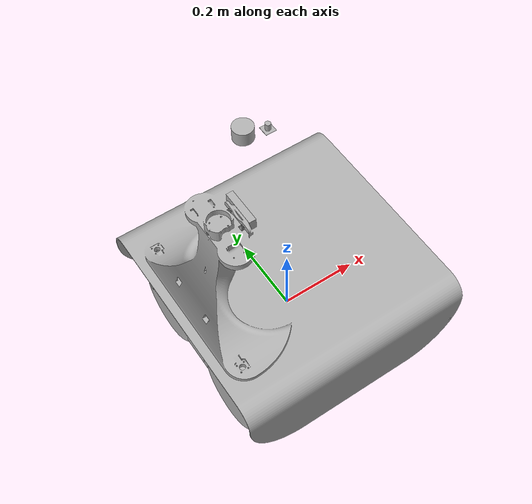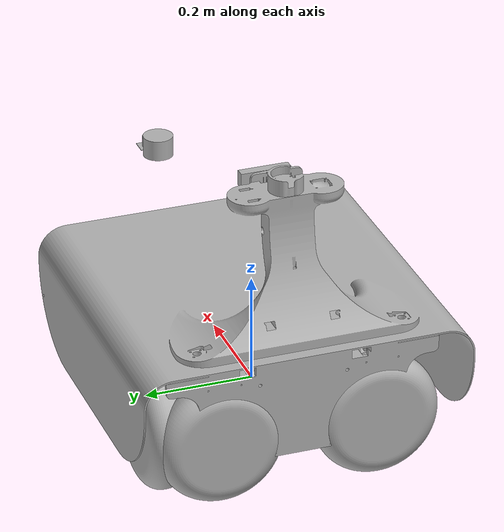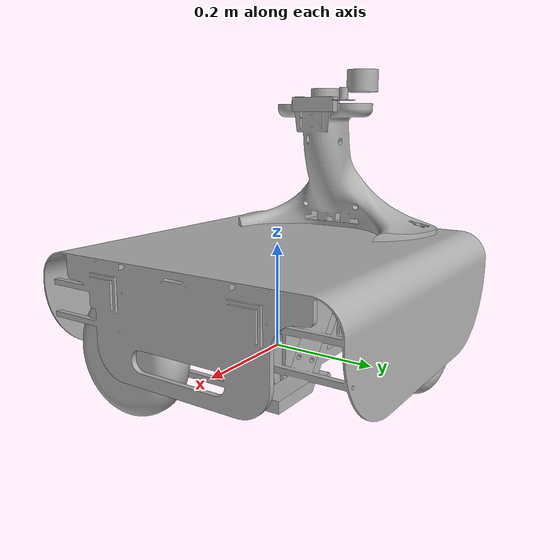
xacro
<?xml version="1.0" ?>
<robot name="URDF_ROBBOX" xmlns:xacro="http://www.ros.org/wiki/xacro">

<xacro:include filename="$(find URDF_ROBBOX_description)/urdf/materials.xacro" />
<xacro:include filename="$(find URDF_ROBBOX_description)/urdf/URDF_ROBBOX.trans" />
<xacro:include filename="$(find URDF_ROBBOX_description)/urdf/URDF_ROBBOX.gazebo" />
<link name="base_link">
  <inertial>
    <origin xyz="-0.025488169162561854 -2.4090750285970683e-05 0.14529190576177384" rpy="0 0 0"/>
    <mass value="62.6452702293474"/>
    <inertia ixx="1.926172" iyy="2.829827" izz="3.653023" ixy="0.001791" iyz="-0.001655" ixz="0.302171"/>
  </inertial>
  <visual>
    <origin xyz="0 0 0" rpy="0 0 0"/>
    <geometry>
      <mesh filename="package://URDF_ROBBOX_description/meshes/base_link.stl" scale="0.001 0.001 0.001"/>
    </geometry>
    <material name="silver"/>
  </visual>
  <collision>
    <origin xyz="0 0 0" rpy="0 0 0"/>
    <geometry>
      <mesh filename="package://URDF_ROBBOX_description/meshes/base_link.stl" scale="0.001 0.001 0.001"/>
    </geometry>
  </collision>
</link>

<link name="camera_rpi_1">
  <inertial>
    <origin xyz="3.993788821321509e-07 -5.712548975522758e-09 0.008386121687044445" rpy="0 0 0"/>
    <mass value="0.02911425866986295"/>
    <inertia ixx="2e-06" iyy="2e-06" izz="1e-06" ixy="-0.0" iyz="-0.0" ixz="0.0"/>
  </inertial>
  <visual>
    <origin xyz="0.170663 -0.065 -0.4615" rpy="0 0 0"/>
    <geometry>
      <mesh filename="package://URDF_ROBBOX_description/meshes/camera_rpi_1.stl" scale="0.001 0.001 0.001"/>
    </geometry>
    <material name="silver"/>
  </visual>
  <collision>
    <origin xyz="0.170663 -0.065 -0.4615" rpy="0 0 0"/>
    <geometry>
      <mesh filename="package://URDF_ROBBOX_description/meshes/camera_rpi_1.stl" scale="0.001 0.001 0.001"/>
    </geometry>
  </collision>
</link>

<link name="lidar_1">
  <inertial>
    <origin xyz="-2.840693373307168e-07 -4.053001292181704e-07 0.01805000000000001" rpy="0 0 0"/>
    <mass value="0.6018294382769799"/>
    <inertia ixx="0.000167" iyy="0.000167" izz="0.000203" ixy="0.0" iyz="0.0" ixz="0.0"/>
  </inertial>
  <visual>
    <origin xyz="0.170806 0.000331 -0.4765" rpy="0 0 0"/>
    <geometry>
      <mesh filename="package://URDF_ROBBOX_description/meshes/lidar_1.stl" scale="0.001 0.001 0.001"/>
    </geometry>
    <material name="silver"/>
  </visual>
  <collision>
    <origin xyz="0.170806 0.000331 -0.4765" rpy="0 0 0"/>
    <geometry>
      <mesh filename="package://URDF_ROBBOX_description/meshes/lidar_1.stl" scale="0.001 0.001 0.001"/>
    </geometry>
  </collision>
</link>

<link name="camera_oak_1">
  <inertial>
    <origin xyz="0.008750436983790896 0.015000386015228177 2.220446049250313e-16" rpy="0 0 0"/>
    <mass value="0.3500314999999998"/>
    <inertia ixx="0.000264" iyy="3.2e-05" izz="0.00025" ixy="0.0" iyz="0.0" ixz="-0.0"/>
  </inertial>
  <visual>
    <origin xyz="0.115772 0.000238 -0.4595" rpy="0 0 0"/>
    <geometry>
      <mesh filename="package://URDF_ROBBOX_description/meshes/camera_oak_1.stl" scale="0.001 0.001 0.001"/>
    </geometry>
    <material name="silver"/>
  </visual>
  <collision>
    <origin xyz="0.115772 0.000238 -0.4595" rpy="0 0 0"/>
    <geometry>
      <mesh filename="package://URDF_ROBBOX_description/meshes/camera_oak_1.stl" scale="0.001 0.001 0.001"/>
    </geometry>
  </collision>
</link>

<link name="wheel_rear_left_1">
  <inertial>
    <origin xyz="-4.886100668233251e-07 0.03749999999999995 -3.196217084333597e-07" rpy="0 0 0"/>
    <mass value="21.681597434756032"/>
    <inertia ixx="0.073667" iyy="0.129466" izz="0.073667" ixy="0.0" iyz="0.0" ixz="0.0"/>
  </inertial>
  <visual>
    <origin xyz="0.143797 -0.195 -0.028767" rpy="0 0 0"/>
    <geometry>
      <mesh filename="package://URDF_ROBBOX_description/meshes/wheel_rear_left_1.stl" scale="0.001 0.001 0.001"/>
    </geometry>
    <material name="silver"/>
  </visual>
  <collision>
    <origin xyz="0.143797 -0.195 -0.028767" rpy="0 0 0"/>
    <geometry>
      <mesh filename="package://URDF_ROBBOX_description/meshes/wheel_rear_left_1.stl" scale="0.001 0.001 0.001"/>
    </geometry>
  </collision>
</link>

<link name="wheel_front_left_1">
  <inertial>
    <origin xyz="3.689894347569389e-07 0.03750000000000006 -3.469446951953614e-18" rpy="0 0 0"/>
    <mass value="21.68159743475604"/>
    <inertia ixx="0.073667" iyy="0.129466" izz="0.073667" ixy="-0.0" iyz="0.0" ixz="0.0"/>
  </inertial>
  <visual>
    <origin xyz="-0.145731 -0.195 -0.0289" rpy="0 0 0"/>
    <geometry>
      <mesh filename="package://URDF_ROBBOX_description/meshes/wheel_front_left_1.stl" scale="0.001 0.001 0.001"/>
    </geometry>
    <material name="silver"/>
  </visual>
  <collision>
    <origin xyz="-0.145731 -0.195 -0.0289" rpy="0 0 0"/>
    <geometry>
      <mesh filename="package://URDF_ROBBOX_description/meshes/wheel_front_left_1.stl" scale="0.001 0.001 0.001"/>
    </geometry>
  </collision>
</link>

<link name="wheel_front_right_1">
  <inertial>
    <origin xyz="-3.6898943472918333e-07 -0.03750028900560054 -3.469446951953614e-18" rpy="0 0 0"/>
    <mass value="21.681597434756032"/>
    <inertia ixx="0.073667" iyy="0.129466" izz="0.073667" ixy="0.0" iyz="0.0" ixz="0.0"/>
  </inertial>
  <visual>
    <origin xyz="-0.144669 0.195967 -0.0289" rpy="0 0 0"/>
    <geometry>
      <mesh filename="package://URDF_ROBBOX_description/meshes/wheel_front_right_1.stl" scale="0.001 0.001 0.001"/>
    </geometry>
    <material name="silver"/>
  </visual>
  <collision>
    <origin xyz="-0.144669 0.195967 -0.0289" rpy="0 0 0"/>
    <geometry>
      <mesh filename="package://URDF_ROBBOX_description/meshes/wheel_front_right_1.stl" scale="0.001 0.001 0.001"/>
    </geometry>
  </collision>
</link>

<link name="wheel_rear_right_1">
  <inertial>
    <origin xyz="-4.886100667678139e-07 -0.03750000000000006 -3.196217084333597e-07" rpy="0 0 0"/>
    <mass value="21.68159743475604"/>
    <inertia ixx="0.073667" iyy="0.129466" izz="0.073667" ixy="0.0" iyz="0.0" ixz="0.0"/>
  </inertial>
  <visual>
    <origin xyz="0.143797 0.195 -0.028767" rpy="0 0 0"/>
    <geometry>
      <mesh filename="package://URDF_ROBBOX_description/meshes/wheel_rear_right_1.stl" scale="0.001 0.001 0.001"/>
    </geometry>
    <material name="silver"/>
  </visual>
  <collision>
    <origin xyz="0.143797 0.195 -0.028767" rpy="0 0 0"/>
    <geometry>
      <mesh filename="package://URDF_ROBBOX_description/meshes/wheel_rear_right_1.stl" scale="0.001 0.001 0.001"/>
    </geometry>
  </collision>
</link>

<joint name="Rigid 1" type="fixed">
  <origin xyz="-0.170663 0.065 0.4615" rpy="0 0 0"/>
  <parent link="base_link"/>
  <child link="camera_rpi_1"/>
</joint>

<joint name="Rigid 2" type="fixed">
  <origin xyz="-0.170806 -0.000331 0.4765" rpy="0 0 0"/>
  <parent link="base_link"/>
  <child link="lidar_1"/>
</joint>

<joint name="Rigid 3" type="fixed">
  <origin xyz="-0.115772 -0.000238 0.4595" rpy="0 0 0"/>
  <parent link="base_link"/>
  <child link="camera_oak_1"/>
</joint>

<joint name="Revolute 4" type="continuous">
  <origin xyz="-0.143797 0.195 0.028767" rpy="0 0 0"/>
  <parent link="base_link"/>
  <child link="wheel_rear_left_1"/>
  <axis xyz="0.0 1.0 0.0"/>
</joint>

<joint name="Revolute 5" type="continuous">
  <origin xyz="0.145731 0.195 0.0289" rpy="0 0 0"/>
  <parent link="base_link"/>
  <child link="wheel_front_left_1"/>
  <axis xyz="0.0 1.0 0.0"/>
</joint>

<joint name="Revolute 6" type="continuous">
  <origin xyz="0.144669 -0.195967 0.0289" rpy="0 0 0"/>
  <parent link="base_link"/>
  <child link="wheel_front_right_1"/>
  <axis xyz="0.0 -1.0 0.0"/>
</joint>

<joint name="Revolute 7" type="continuous">
  <origin xyz="-0.143797 -0.195 0.028767" rpy="0 0 0"/>
  <parent link="base_link"/>
  <child link="wheel_rear_right_1"/>
  <axis xyz="0.0 -1.0 0.0"/>
</joint>

</robot>

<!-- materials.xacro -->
<robot name="URDF_ROBBOX" xmlns:xacro="http://www.ros.org/wiki/xacro" >

<material name="silver">
  <color rgba="0.700 0.700 0.700 1.000"/>
</material>

</robot>

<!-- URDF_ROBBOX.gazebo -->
<robot name="URDF_ROBBOX" xmlns:xacro="http://www.ros.org/wiki/xacro" >

<xacro:property name="body_color" value="Gazebo/Silver" />

<gazebo>
  <plugin name="control" filename="libgazebo_ros_control.so"/>
</gazebo>
<gazebo reference="base_link">
  <material>${body_color}</material>
  <mu1>0.2</mu1>
  <mu2>0.2</mu2>
  <selfCollide>true</selfCollide>
  <gravity>true</gravity>
</gazebo>

<gazebo reference="camera_rpi_1">
  <material>${body_color}</material>
  <mu1>0.2</mu1>
  <mu2>0.2</mu2>
  <selfCollide>true</selfCollide>
</gazebo>

<gazebo reference="lidar_1">
  <material>${body_color}</material>
  <mu1>0.2</mu1>
  <mu2>0.2</mu2>
  <selfCollide>true</selfCollide>
</gazebo>

<gazebo reference="camera_oak_1">
  <material>${body_color}</material>
  <mu1>0.2</mu1>
  <mu2>0.2</mu2>
  <selfCollide>true</selfCollide>
</gazebo>

<gazebo reference="wheel_rear_left_1">
  <material>${body_color}</material>
  <mu1>0.2</mu1>
  <mu2>0.2</mu2>
  <selfCollide>true</selfCollide>
</gazebo>

<gazebo reference="wheel_front_left_1">
  <material>${body_color}</material>
  <mu1>0.2</mu1>
  <mu2>0.2</mu2>
  <selfCollide>true</selfCollide>
</gazebo>

<gazebo reference="wheel_front_right_1">
  <material>${body_color}</material>
  <mu1>0.2</mu1>
  <mu2>0.2</mu2>
  <selfCollide>true</selfCollide>
</gazebo>

<gazebo reference="wheel_rear_right_1">
  <material>${body_color}</material>
  <mu1>0.2</mu1>
  <mu2>0.2</mu2>
  <selfCollide>true</selfCollide>
</gazebo>

</robot>
